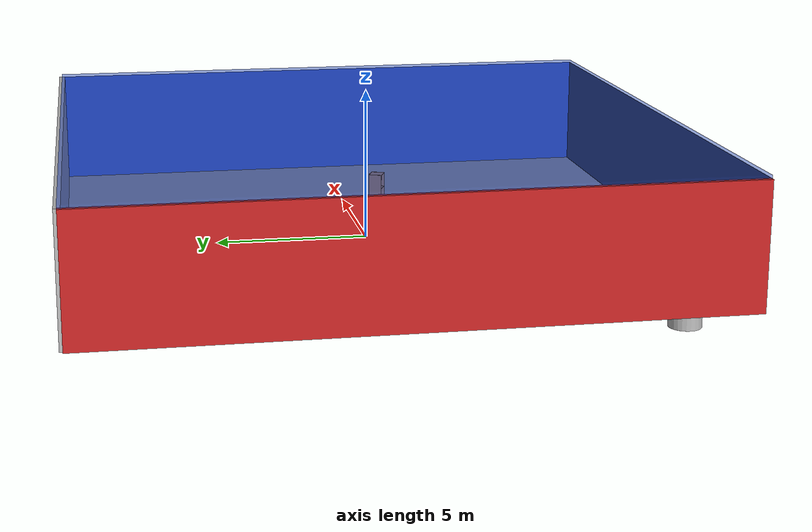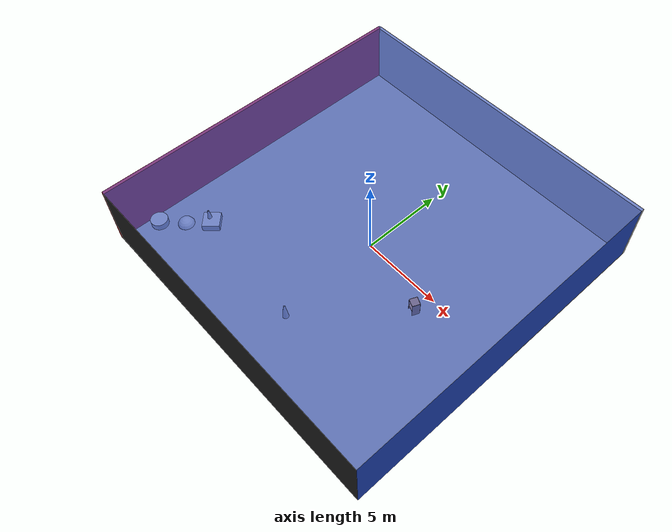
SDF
<sdf version="1.4">
 <world name="default">
  <physics type="ode">
   <max_step_size>0.001</max_step_size>
   <real_time_factor>1</real_time_factor>
   <real_time_update_rate>1000</real_time_update_rate>
   <gravity>0 0 -9.8</gravity>
  </physics>
  <scene><ambient>0.4 0.4 0.4 1</ambient><background>0.7 0.7 0.7 1</background><shadows>1</shadows></scene>
  <model name="Surrounding">
   <static>1</static>
   <link name="Ceiling">
    <collision name="Ceiling_Collision"><geometry><box><size>20 20 0.1</size></box></geometry></collision>
    <visual name="Ceiling_Visual">
     <geometry><box><size>20 20 0.1</size></box></geometry>
     <material>
      <script><uri>file://media/materials/scripts/gazebo.material</uri><name>Gazebo/BlueTransparent</name></script>
     </material>
    </visual>
    <pose>0 0 4.05 0 0 0</pose>
   </link>
   <link name="Wall_South">
    <collision name="Wall_South_Collision">
     <geometry><box><size>20 0 4</size></box></geometry>
     <pose>0 0 2 0 -0 0</pose>
    </collision>
    <visual name="Wall_South_Visual">
     <pose>0 0 2 0 -0 0</pose>
     <geometry><box><size>20 0 4</size></box></geometry>
     <material>
      <script><uri>file://media/materials/scripts/gazebo.material</uri><name>Gazebo/FlatBlack</name></script>
     </material>
    </visual>
    <velocity_decay><linear>0</linear><angular>0</angular></velocity_decay>
    <pose>0 -10 0 0 -0 0</pose>
   </link>
   <link name="Wall_East">
    <collision name="Wall_21_Collision">
     <geometry><box><size>20 0 4</size></box></geometry>
     <pose>0 0 2 0 -0 0</pose>
    </collision>
    <visual name="Wall_21_Visual">
     <pose>0 0 2 0 -0 0</pose>
     <geometry><box><size>20 0 4</size></box></geometry>
     <material>
      <script><uri>file://media/materials/scripts/gazebo.material</uri><name>Gazebo/BlueGlow</name></script>
     </material>
    </visual>
    <velocity_decay><linear>0</linear><angular>0</angular></velocity_decay>
    <pose>10 0 0 0 -0 1.5708</pose>
   </link>
   <link name="Wall_North">
    <collision name="Wall_22_Collision">
     <geometry><box><size>20 0.2 4</size></box></geometry>
     <pose>0 0 2 0 -0 0</pose>
    </collision>
    <visual name="Wall_22_Visual">
     <pose>0 0 2 0 -0 0</pose>
     <geometry><box><size>20 0.2 4</size></box></geometry>
     <material>
      <script><uri>file://media/materials/scripts/gazebo.material</uri><name>Gazebo/LightOn</name></script>
     </material>
    </visual>
    <velocity_decay><linear>0</linear><angular>0</angular></velocity_decay>
    <pose>0 10 0 0 -0 0</pose>
   </link>
   <link name="Wall_West">
    <collision name="Wall_23_Collision">
     <geometry><box><size>20 0.2 4</size></box></geometry>
     <pose>0 0 2 0 -0 0</pose>
    </collision>
    <visual name="Wall_23_Visual">
     <pose>0 0 2 0 -0 0</pose>
     <geometry><box><size>20 0.2 4</size></box></geometry>
     <material>
      <script><uri>file://media/materials/scripts/gazebo.material</uri><name>Gazebo/Red</name></script>
     </material>
    </visual>
    <velocity_decay><linear>0</linear><angular>0</angular></velocity_decay>
    <pose>-10 0 0 0 0 -1.5708</pose>
   </link>
   <link name="Ground_link">
    <collision name="collision">
     <pose>0 0 .05 0 -0 0</pose>
     <geometry><box><size>20 20 0.1</size></box></geometry>
    </collision>
    <visual name="visual">
     <pose>0 0 .05 0 -0 0</pose>
     <geometry><box><size>20 20 0.1</size></box></geometry>
     <material>
      <script><uri>file://media/materials/scripts/gazebo.material</uri><name>Gazebo/Grey</name></script>
     </material>
    </visual>
   </link>
   <static>1</static>
  </model>
  <spherical_coordinates>
   <surface_model>EARTH_WGS84</surface_model>
   <latitude_deg>0</latitude_deg>
   <longitude_deg>0</longitude_deg>
   <elevation>0</elevation>
   <heading_deg>0</heading_deg>
  </spherical_coordinates>
  <light name="lightball_0" type="diffuse">
   <diffuse>0.8 0.8 0.8 1</diffuse>
   <specular>0.2 0.2 0.2 1</specular>
   <attenuation>
    <range>100</range>
    <constant>0.7</constant>
    <linear>0.01</linear>
    <quadratic>0.001</quadratic>
   </attenuation>
   <direction>-0.5 0.1 -0.9</direction>
   <pose>2.09466586139 -1.49865871485 2.99114601782 0 0 0</pose>
  </light>
  <light name="lightball_1" type="diffuse">
   <diffuse>0.8 0.8 0.8 1</diffuse>
   <specular>0.2 0.2 0.2 1</specular>
   <attenuation>
    <range>100</range>
    <constant>0.7</constant>
    <linear>0.01</linear>
    <quadratic>0.001</quadratic>
   </attenuation>
   <direction>-0.5 0.1 -0.9</direction>
   <pose>-9.78465915203 -2.23288730135 2.65533880411 0 0 0</pose>
  </light>
  <light name="lightball_2" type="diffuse">
   <diffuse>0.8 0.8 0.8 1</diffuse>
   <specular>0.2 0.2 0.2 1</specular>
   <attenuation>
    <range>100</range>
    <constant>0.7</constant>
    <linear>0.01</linear>
    <quadratic>0.001</quadratic>
   </attenuation>
   <direction>-0.5 0.1 -0.9</direction>
   <pose>-4.0377673255 4.91310610508 1.68493688325 0 0 0</pose>
  </light>
  <light name="lightball_3" type="diffuse">
   <diffuse>0.8 0.8 0.8 1</diffuse>
   <specular>0.2 0.2 0.2 1</specular>
   <attenuation>
    <range>100</range>
    <constant>0.7</constant>
    <linear>0.01</linear>
    <quadratic>0.001</quadratic>
   </attenuation>
   <direction>-0.5 0.1 -0.9</direction>
   <pose>-4.37050411 -2.22667173049 2.51585573051 0 0 0</pose>
  </light>
  <light name="lightball_4" type="diffuse">
   <diffuse>0.8 0.8 0.8 1</diffuse>
   <specular>0.2 0.2 0.2 1</specular>
   <attenuation>
    <range>100</range>
    <constant>0.7</constant>
    <linear>0.01</linear>
    <quadratic>0.001</quadratic>
   </attenuation>
   <direction>-0.5 0.1 -0.9</direction>
   <pose>1.5049005425 1.33646145214 2.34376283724 0 0 0</pose>
  </light>
  <light name="lightball_5" type="diffuse">
   <diffuse>0.8 0.8 0.8 1</diffuse>
   <specular>0.2 0.2 0.2 1</specular>
   <attenuation>
    <range>100</range>
    <constant>0.7</constant>
    <linear>0.01</linear>
    <quadratic>0.001</quadratic>
   </attenuation>
   <direction>-0.5 0.1 -0.9</direction>
   <pose>5.77783430121 -1.43258430876 2.5020412171 0 0 0</pose>
  </light>
  <light name="lightball_6" type="diffuse">
   <diffuse>0.8 0.8 0.8 1</diffuse>
   <specular>0.2 0.2 0.2 1</specular>
   <attenuation>
    <range>100</range>
    <constant>0.7</constant>
    <linear>0.01</linear>
    <quadratic>0.001</quadratic>
   </attenuation>
   <direction>-0.5 0.1 -0.9</direction>
   <pose>0.804380223963 3.48440319562 0.877748143087 0 0 0</pose>
  </light>
  <light name="lightball_7" type="diffuse">
   <diffuse>0.8 0.8 0.8 1</diffuse>
   <specular>0.2 0.2 0.2 1</specular>
   <attenuation>
    <range>100</range>
    <constant>0.7</constant>
    <linear>0.01</linear>
    <quadratic>0.001</quadratic>
   </attenuation>
   <direction>-0.5 0.1 -0.9</direction>
   <pose>-8.18953745008 6.22160311225 0.548340083023 0 0 0</pose>
  </light>
  <light name="lightball_8" type="diffuse">
   <diffuse>0.8 0.8 0.8 1</diffuse>
   <specular>0.2 0.2 0.2 1</specular>
   <attenuation>
    <range>100</range>
    <constant>0.7</constant>
    <linear>0.01</linear>
    <quadratic>0.001</quadratic>
   </attenuation>
   <direction>-0.5 0.1 -0.9</direction>
   <pose>6.56896073424 -6.0843603842 1.8824299587 0 0 0</pose>
  </light>
  <light name="lightball_9" type="diffuse">
   <diffuse>0.8 0.8 0.8 1</diffuse>
   <specular>0.2 0.2 0.2 1</specular>
   <attenuation>
    <range>100</range>
    <constant>0.7</constant>
    <linear>0.01</linear>
    <quadratic>0.001</quadratic>
   </attenuation>
   <direction>-0.5 0.1 -0.9</direction>
   <pose>1.31195730094 5.62156552203 1.74190202043 0 0 0</pose>
  </light>
  <light name="lightball_10" type="diffuse">
   <diffuse>0.8 0.8 0.8 1</diffuse>
   <specular>0.2 0.2 0.2 1</specular>
   <attenuation>
    <range>100</range>
    <constant>0.7</constant>
    <linear>0.01</linear>
    <quadratic>0.001</quadratic>
   </attenuation>
   <direction>-0.5 0.1 -0.9</direction>
   <pose>-1.98233904676 -3.91569541478 1.6000703639 0 0 0</pose>
  </light>
  <include>
   <uri>model://textured_shapes</uri>
   <pose>-8.28872225788 -6.75531253512 0 0 0 2.38663784772</pose>
  </include>
  <include>
   <uri>model://construction_cone</uri>
   <pose>-7.44622519757 -5.64489712463 0 0 0 0.0523954732484</pose>
  </include>
  <include>
   <uri>model://construction_cone</uri>
   <pose>0.347072378551 -6.40223414594 0 0 0 1.15805592806</pose>
  </include>
  <include><uri>model://cabinet</uri><pose>4.70980976006 -1.21323589377 0 0 0 1.16225914241</pose></include>
 </world>
</sdf>

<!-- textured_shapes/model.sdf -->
<sdf version="1.6">
  <model name="textured_shapes">
    <pose>0 0 0.5 0 0 0</pose>
    <link name="box">
      <pose>0 -1.5 0 0 0 0</pose>
      <collision name="collision">
        <geometry>
          <box>
            <size>1 1 1</size>
          </box>
        </geometry>
      </collision>
      <visual name="visual">
        <geometry>
          <box>
            <size>1 1 1</size>
          </box>
        </geometry>
        <material>
          <script>
            <uri>model://../model_source/models/textured_shapes/materials/scripts</uri>
            <uri>model://../model_source/models/textured_shapes/materials/textures</uri>
            <name>TexturedShape/Squares</name>
          </script>
        </material>
      </visual>
    </link>
    <link name="sphere">
      <collision name="collision">
        <geometry>
          <sphere>
            <radius>0.5</radius>
          </sphere>
        </geometry>
      </collision>
      <visual name="visual">
        <geometry>
          <sphere>
            <radius>0.5</radius>
          </sphere>
        </geometry>
        <material>
          <script>
            <uri>model://../model_source/models/textured_shapes/materials/scripts</uri>
            <uri>model://../model_source/models/textured_shapes/materials/textures</uri>
            <name>TexturedShape/Squares</name>
          </script>
        </material>
      </visual>
    </link>
    <link name="cylinder">
      <pose>0 1.5 0 0 0 0</pose>
      <collision name="collision">
        <geometry>
          <cylinder>
            <radius>0.5</radius>
            <length>1</length>
          </cylinder>
        </geometry>
      </collision>
      <visual name="visual">
        <geometry>
          <cylinder>
            <radius>0.5</radius>
            <length>1</length>
          </cylinder>
        </geometry>
        <material>
          <script>
            <uri>model://../model_source/models/textured_shapes/materials/scripts</uri>
            <uri>model://../model_source/models/textured_shapes/materials/textures</uri>
            <name>TexturedShape/Squares</name>
          </script>
        </material>
      </visual>
    </link>
  </model>
</sdf>

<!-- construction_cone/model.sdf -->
<sdf version="1.5">
  <model name="Construction Cone">
    <link name="link">
      <collision name="collision">
        <geometry>
          <mesh>
            <scale>10 10 10</scale>
            <uri>file://isr-testbed/construction_cone/meshes/construction_cone.dae</uri>
          </mesh>
        </geometry>
      </collision>
      <visual name="visual">
        <geometry>
          <mesh>
            <scale>10 10 10</scale>
            <uri>file://isr-testbed/construction_cone/meshes/construction_cone.dae</uri>
          </mesh>
        </geometry>
      </visual>
    </link>
  </model>
</sdf>

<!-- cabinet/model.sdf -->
<sdf version="1.5">
  <model name="cabinet">
    <static>true</static>
    <link name="cabinet_bottom_plate">
      <inertial>
        <pose>0 0 -1 0 0 0</pose>
        <inertia>
          <ixx>2.050000</ixx>
          <ixy>0</ixy>
          <ixz>0</ixz>
          <iyy>2.050000</iyy>
          <iyz>0</iyz>
          <izz>2.050000</izz>
        </inertia>
        <mass>25.000000</mass>
      </inertial>
      <collision name="cabinet_bottom_plate_geom">
        <pose>0 0 0.010000 0 0 0</pose>
        <geometry>
          <box>
            <size>0.450000 0.450000 0.020000</size>
          </box>
        </geometry>
      </collision>
      <visual name="cabinet_bottom_plate_geom_visual">
        <pose>0 0 0.010000 0 0 0</pose>
        <geometry>
          <box>
            <size>0.450000 0.450000 0.020000</size>
          </box>
        </geometry>
        <material>
          <script>
            <uri>model://media/materials/scripts/gazebo.material</uri>
            <name>Gazebo/Wood</name>
          </script>
        </material>
      </visual>
      <collision name="cabinet_bottom_plate_geom_cabinet_back_plate">
        <pose>0.235000 0 0.510000 0 0 0</pose>
        <geometry>
          <box>
            <size>0.020000 0.450000 1.020000</size>
          </box>
        </geometry>
      </collision>
      <visual name="cabinet_bottom_plate_geom_cabinet_back_plate_visual">
        <pose>0.235000 0 0.510000 0 0 0</pose>
        <geometry>
          <box>
            <size>0.020000 0.450000 1.020000</size>
          </box>
        </geometry>
        <material>
          <script>
            <uri>model://media/materials/scripts/gazebo.material</uri>
            <name>Gazebo/Wood</name>
          </script>
        </material>
      </visual>
      <collision name="cabinet_bottom_plate_geom_cabinet_left_plate">
        <pose>0 0.235000 0.510000 0 0 0</pose>
        <geometry>
          <box>
            <size>0.450000 0.020000 1.020000</size>
          </box>
        </geometry>
      </collision>
      <visual name="cabinet_bottom_plate_geom_cabinet_left_plate_visual">
        <pose>0 0.235000 0.510000 0 0 0</pose>
        <geometry>
          <box>
            <size>0.450000 0.020000 1.020000</size>
          </box>
        </geometry>
        <material>
          <script>
            <uri>model://media/materials/scripts/gazebo.material</uri>
            <name>Gazebo/Wood</name>
          </script>
        </material>
      </visual>
      <collision name="cabinet_bottom_plate_geom_cabinet_middle_plate">
        <pose>0 0 0.510000 0 0 0</pose>
        <geometry>
          <box>
            <size>0.450000 0.450000 0.020000</size>
          </box>
        </geometry>
      </collision>
      <visual name="cabinet_bottom_plate_geom_cabinet_middle_plate_visual">
        <pose>0 0 0.510000 0 0 0</pose>
        <geometry>
          <box>
            <size>0.450000 0.450000 0.020000</size>
          </box>
        </geometry>
        <material>
          <script>
            <uri>model://media/materials/scripts/gazebo.material</uri>
            <name>Gazebo/Wood</name>
          </script>
        </material>
      </visual>
      <collision name="cabinet_bottom_plate_geom_cabinet_right_plate">
        <pose>0 -0.235000 0.510000 0 0 0</pose>
        <geometry>
          <box>
            <size>0.450000 0.020000 1.020000</size>
          </box>
        </geometry>
      </collision>
      <visual name="cabinet_bottom_plate_geom_cabinet_right_plate_visual">
        <pose>0 -0.235000 0.510000 0 0 0</pose>
        <geometry>
          <box>
            <size>0.450000 0.020000 1.020000</size>
          </box>
        </geometry>
        <material>
          <script>
            <uri>model://media/materials/scripts/gazebo.material</uri>
            <name>Gazebo/Wood</name>
          </script>
        </material>
      </visual>
      <collision name="cabinet_bottom_plate_geom_cabinet_top_plate">
        <pose>0 0 1.010000 0 0 0</pose>
        <geometry>
          <box>
            <size>0.450000 0.450000 0.020000</size>
          </box>
        </geometry>
      </collision>
      <visual name="cabinet_bottom_plate_geom_cabinet_top_plate_visual">
        <pose>0 0 1.010000 0 0 0</pose>
        <geometry>
          <box>
            <size>0.450000 0.450000 0.020000</size>
          </box>
        </geometry>
        <material>
          <script>
            <uri>model://media/materials/scripts/gazebo.material</uri>
            <name>Gazebo/Wood</name>
          </script>
        </material>
      </visual>
    </link>
  </model>
</sdf>
